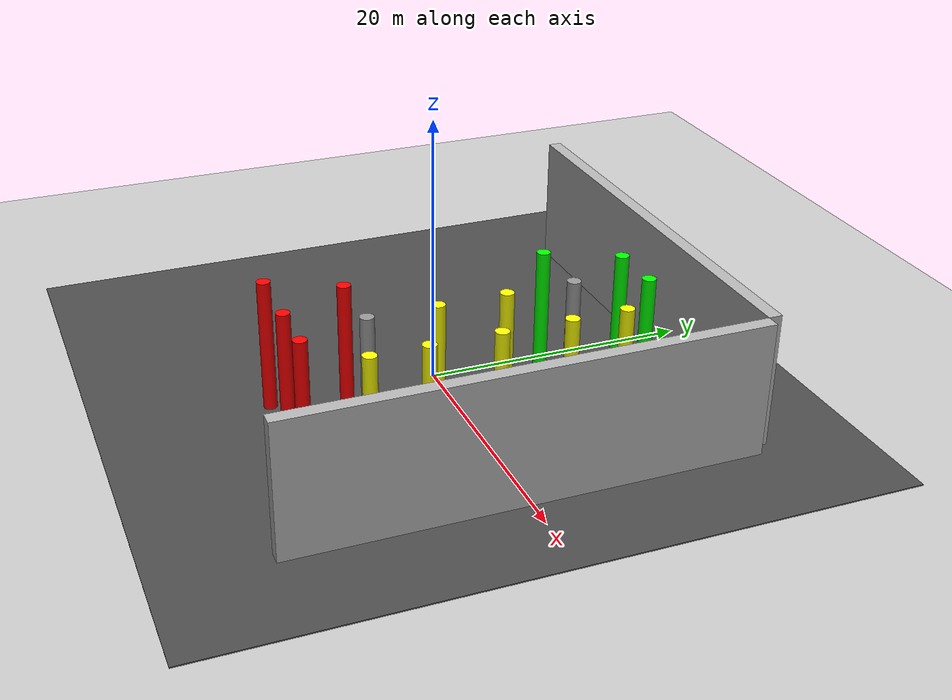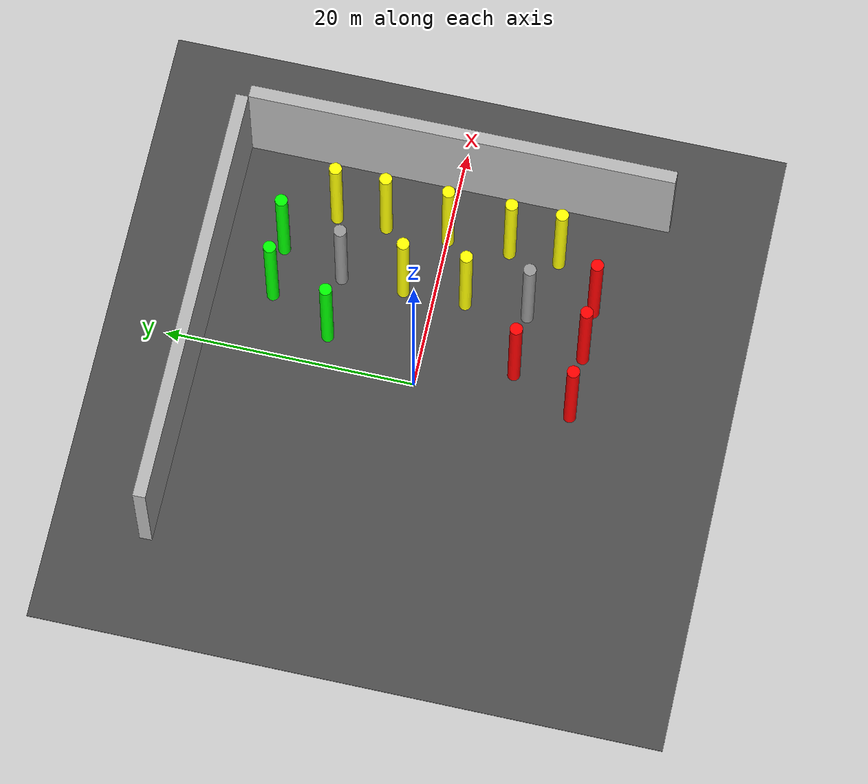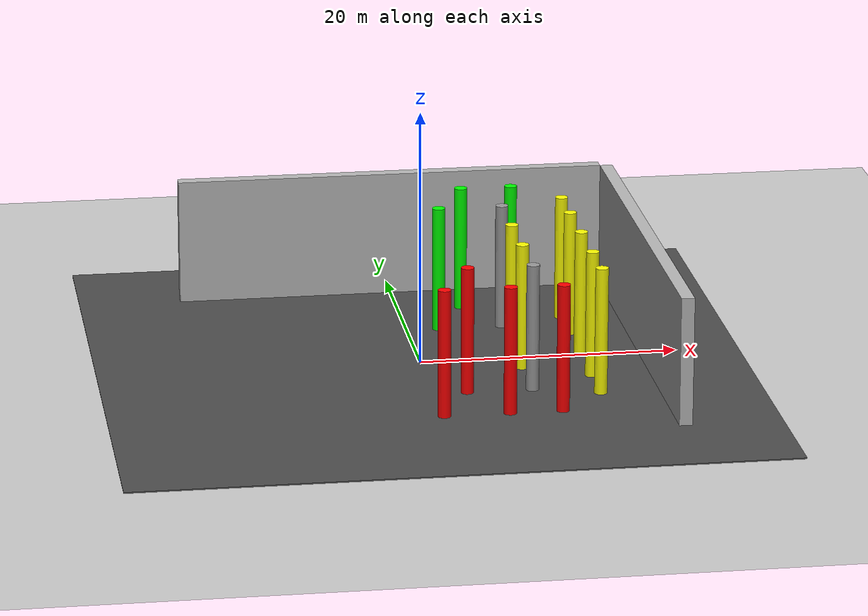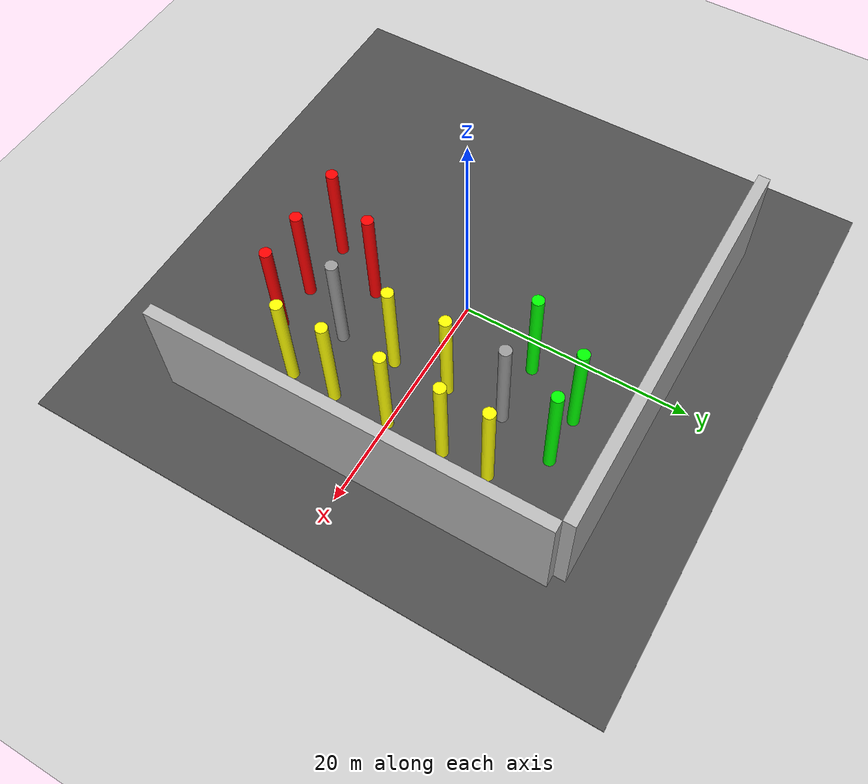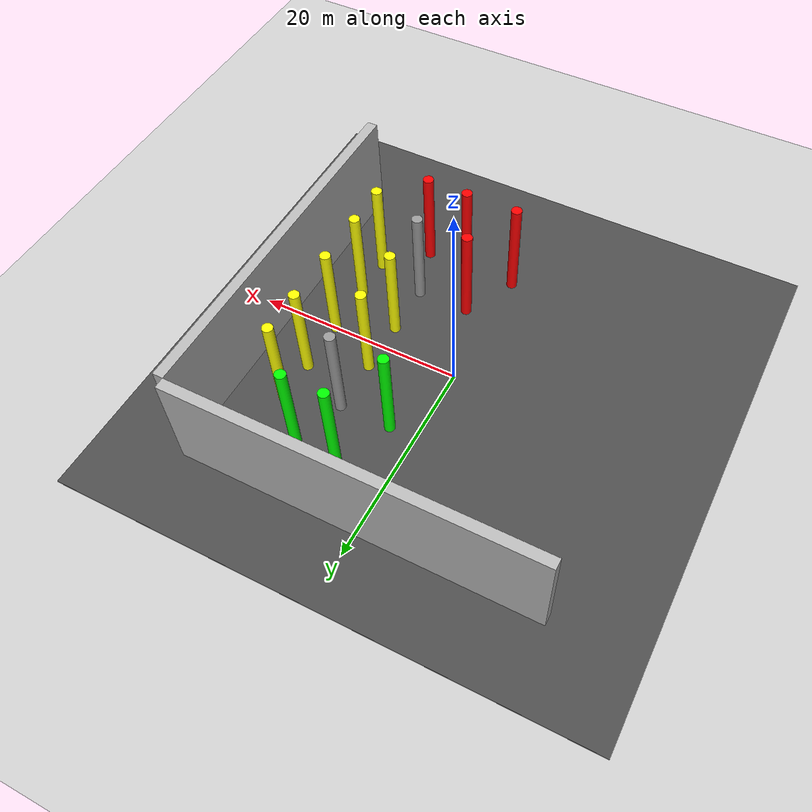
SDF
<sdf version="1.7">
 <world name="default">
  <include><uri>model://sun</uri></include>
  <include><uri>model://ground_plane</uri></include>
  <model name="asphalt_plane">
   <link name="link">
    <inertial>
     <mass>1</mass>
     <inertia><ixx>1</ixx><ixy>0</ixy><ixz>0</ixz><iyy>1</iyy><iyz>0</iyz><izz>1</izz></inertia>
    </inertial>
    <visual name="visual">
     <cast_shadows>0</cast_shadows>
     <geometry><box><size>50 50 0.1</size></box></geometry>
     <material>
      <script>
       <uri>model://asphalt_plane/materials/scripts</uri>
       <uri>model://asphalt_plane/materials/textures</uri>
       <name>vrc/asphalt</name>
      </script>
      <shader type="pixel"><normal_map>__default__</normal_map></shader>
      <ambient>0.5 0.5 0.5 1</ambient>
      <diffuse>0.5 0.5 0.5 1</diffuse>
      <specular>0.2 0.2 0.2 1</specular>
      <emissive>0 0 0 1</emissive>
     </material>
    </visual>
    <collision name="collision">
     <geometry><box><size>50 50 0.1</size></box></geometry>
     <surface>
      <friction>
       <ode><mu>1</mu><mu2>1</mu2><fdir1>0 0 0</fdir1><slip1>0</slip1><slip2>0</slip2></ode>
       <torsional>
        <coefficient>1</coefficient>
        <patch_radius>0</patch_radius>
        <surface_radius>0</surface_radius>
        <use_patch_radius>1</use_patch_radius>
        <ode><slip>0</slip></ode>
       </torsional>
      </friction>
      <bounce><restitution_coefficient>0</restitution_coefficient><threshold>1e+06</threshold></bounce>
      <contact>
       <collide_without_contact>0</collide_without_contact>
       <collide_without_contact_bitmask>1</collide_without_contact_bitmask>
       <collide_bitmask>1</collide_bitmask>
       <ode>
        <soft_cfm>0</soft_cfm>
        <soft_erp>0.2</soft_erp>
        <kp>1e+13</kp>
        <kd>1</kd>
        <max_vel>0.01</max_vel>
        <min_depth>0</min_depth>
       </ode>
       <bullet>
        <split_impulse>1</split_impulse>
        <split_impulse_penetration_threshold>-0.01</split_impulse_penetration_threshold>
        <soft_cfm>0</soft_cfm>
        <soft_erp>0.2</soft_erp>
        <kp>1e+13</kp>
        <kd>1</kd>
       </bullet>
      </contact>
     </surface>
    </collision>
   </link>
   <static>1</static>
   <pose>-0.063761 -0.010768 0 0 -0 0</pose>
  </model>
  <model name="red_cylinder">
   <link name="link">
    <inertial>
     <mass>1</mass>
     <inertia><ixx>0.145833</ixx><ixy>0</ixy><ixz>0</ixz><iyy>0.145833</iyy><iyz>0</iyz><izz>0.125</izz></inertia>
    </inertial>
    <visual name="visual">
     <geometry><cylinder><radius>0.5</radius><length>10</length></cylinder></geometry>
     <material>
      <script><name>Gazebo/Grey</name><uri>file://media/materials/scripts/gazebo.material</uri></script>
      <shader type="pixel"><normal_map>__default__</normal_map></shader>
      <ambient>1 0 0 0</ambient>
      <diffuse>0.7 0.7 0.7 1</diffuse>
      <specular>0.01 0.01 0.01 1</specular>
      <emissive>0 0 0 1</emissive>
     </material>
    </visual>
    <collision name="collision">
     <geometry><cylinder><radius>0.5</radius><length>10</length></cylinder></geometry>
     <surface>
      <friction>
       <ode><mu>1</mu><mu2>1</mu2><fdir1>0 0 0</fdir1><slip1>0</slip1><slip2>0</slip2></ode>
       <torsional>
        <coefficient>1</coefficient>
        <patch_radius>0</patch_radius>
        <surface_radius>0</surface_radius>
        <use_patch_radius>1</use_patch_radius>
        <ode><slip>0</slip></ode>
       </torsional>
      </friction>
      <bounce><restitution_coefficient>0</restitution_coefficient><threshold>1e+06</threshold></bounce>
      <contact>
       <collide_without_contact>0</collide_without_contact>
       <collide_without_contact_bitmask>1</collide_without_contact_bitmask>
       <collide_bitmask>1</collide_bitmask>
       <ode>
        <soft_cfm>0</soft_cfm>
        <soft_erp>0.2</soft_erp>
        <kp>1e+13</kp>
        <kd>1</kd>
        <max_vel>0.01</max_vel>
        <min_depth>0</min_depth>
       </ode>
       <bullet>
        <split_impulse>1</split_impulse>
        <split_impulse_penetration_threshold>-0.01</split_impulse_penetration_threshold>
        <soft_cfm>0</soft_cfm>
        <soft_erp>0.2</soft_erp>
        <kp>1e+13</kp>
        <kd>1</kd>
       </bullet>
      </contact>
     </surface>
    </collision>
   </link>
   <static>1</static>
   <pose>0.0144 -12.5 5 0 -0 0</pose>
  </model>
  <model name="yellow_cylinder">
   <link name="link">
    <inertial>
     <mass>1</mass>
     <inertia><ixx>0.145833</ixx><ixy>0</ixy><ixz>0</ixz><iyy>0.145833</iyy><iyz>0</iyz><izz>0.125</izz></inertia>
    </inertial>
    <visual name="visual">
     <geometry><cylinder><radius>0.5</radius><length>10</length></cylinder></geometry>
     <material>
      <script><name>Gazebo/Grey</name><uri>file://media/materials/scripts/gazebo.material</uri></script>
      <shader type="pixel"><normal_map>__default__</normal_map></shader>
      <ambient>1 1 0 0</ambient>
      <diffuse>0.7 0.7 0.7 1</diffuse>
      <specular>0.01 0.01 0.01 1</specular>
      <emissive>0 0 0 1</emissive>
     </material>
    </visual>
    <collision name="collision">
     <geometry><cylinder><radius>0.5</radius><length>10</length></cylinder></geometry>
     <surface>
      <friction>
       <ode><mu>1</mu><mu2>1</mu2><fdir1>0 0 0</fdir1><slip1>0</slip1><slip2>0</slip2></ode>
       <torsional>
        <coefficient>1</coefficient>
        <patch_radius>0</patch_radius>
        <surface_radius>0</surface_radius>
        <use_patch_radius>1</use_patch_radius>
        <ode><slip>0</slip></ode>
       </torsional>
      </friction>
      <bounce><restitution_coefficient>0</restitution_coefficient><threshold>1e+06</threshold></bounce>
      <contact>
       <collide_without_contact>0</collide_without_contact>
       <collide_without_contact_bitmask>1</collide_without_contact_bitmask>
       <collide_bitmask>1</collide_bitmask>
       <ode>
        <soft_cfm>0</soft_cfm>
        <soft_erp>0.2</soft_erp>
        <kp>1e+13</kp>
        <kd>1</kd>
        <max_vel>0.01</max_vel>
        <min_depth>0</min_depth>
       </ode>
       <bullet>
        <split_impulse>1</split_impulse>
        <split_impulse_penetration_threshold>-0.01</split_impulse_penetration_threshold>
        <soft_cfm>0</soft_cfm>
        <soft_erp>0.2</soft_erp>
        <kp>1e+13</kp>
        <kd>1</kd>
       </bullet>
      </contact>
     </surface>
    </collision>
   </link>
   <static>1</static>
   <pose>12.5 0 5 0 -0 0</pose>
  </model>
  <model name="yellow_cylinder_clone">
   <link name="link">
    <inertial>
     <mass>1</mass>
     <inertia><ixx>0.145833</ixx><ixy>0</ixy><ixz>0</ixz><iyy>0.145833</iyy><iyz>0</iyz><izz>0.125</izz></inertia>
    </inertial>
    <visual name="visual">
     <geometry><cylinder><radius>0.5</radius><length>10</length></cylinder></geometry>
     <material>
      <script><name>Gazebo/Grey</name><uri>file://media/materials/scripts/gazebo.material</uri></script>
      <shader type="pixel"><normal_map>__default__</normal_map></shader>
      <ambient>1 1 0 0</ambient>
      <diffuse>0.7 0.7 0.7 1</diffuse>
      <specular>0.01 0.01 0.01 1</specular>
      <emissive>0 0 0 1</emissive>
     </material>
    </visual>
    <collision name="collision">
     <geometry><cylinder><radius>0.5</radius><length>10</length></cylinder></geometry>
     <surface>
      <friction>
       <ode><mu>1</mu><mu2>1</mu2><fdir1>0 0 0</fdir1><slip1>0</slip1><slip2>0</slip2></ode>
       <torsional>
        <coefficient>1</coefficient>
        <patch_radius>0</patch_radius>
        <surface_radius>0</surface_radius>
        <use_patch_radius>1</use_patch_radius>
        <ode><slip>0</slip></ode>
       </torsional>
      </friction>
      <bounce><restitution_coefficient>0</restitution_coefficient><threshold>1e+06</threshold></bounce>
      <contact>
       <collide_without_contact>0</collide_without_contact>
       <collide_without_contact_bitmask>1</collide_without_contact_bitmask>
       <collide_bitmask>1</collide_bitmask>
       <ode>
        <soft_cfm>0</soft_cfm>
        <soft_erp>0.2</soft_erp>
        <kp>1e+13</kp>
        <kd>1</kd>
        <max_vel>0.01</max_vel>
        <min_depth>0</min_depth>
       </ode>
       <bullet>
        <split_impulse>1</split_impulse>
        <split_impulse_penetration_threshold>-0.01</split_impulse_penetration_threshold>
        <soft_cfm>0</soft_cfm>
        <soft_erp>0.2</soft_erp>
        <kp>1e+13</kp>
        <kd>1</kd>
       </bullet>
      </contact>
     </surface>
    </collision>
   </link>
   <static>1</static>
   <pose>12.5 5 5 0 -0 0</pose>
  </model>
  <model name="yellow_cylinder_clone_clone">
   <link name="link">
    <inertial>
     <mass>1</mass>
     <inertia><ixx>0.145833</ixx><ixy>0</ixy><ixz>0</ixz><iyy>0.145833</iyy><iyz>0</iyz><izz>0.125</izz></inertia>
    </inertial>
    <visual name="visual">
     <geometry><cylinder><radius>0.5</radius><length>10</length></cylinder></geometry>
     <material>
      <script><name>Gazebo/Grey</name><uri>file://media/materials/scripts/gazebo.material</uri></script>
      <shader type="pixel"><normal_map>__default__</normal_map></shader>
      <ambient>1 1 0 0</ambient>
      <diffuse>0.7 0.7 0.7 1</diffuse>
      <specular>0.01 0.01 0.01 1</specular>
      <emissive>0 0 0 1</emissive>
     </material>
    </visual>
    <collision name="collision">
     <geometry><cylinder><radius>0.5</radius><length>10</length></cylinder></geometry>
     <surface>
      <friction>
       <ode><mu>1</mu><mu2>1</mu2><fdir1>0 0 0</fdir1><slip1>0</slip1><slip2>0</slip2></ode>
       <torsional>
        <coefficient>1</coefficient>
        <patch_radius>0</patch_radius>
        <surface_radius>0</surface_radius>
        <use_patch_radius>1</use_patch_radius>
        <ode><slip>0</slip></ode>
       </torsional>
      </friction>
      <bounce><restitution_coefficient>0</restitution_coefficient><threshold>1e+06</threshold></bounce>
      <contact>
       <collide_without_contact>0</collide_without_contact>
       <collide_without_contact_bitmask>1</collide_without_contact_bitmask>
       <collide_bitmask>1</collide_bitmask>
       <ode>
        <soft_cfm>0</soft_cfm>
        <soft_erp>0.2</soft_erp>
        <kp>1e+13</kp>
        <kd>1</kd>
        <max_vel>0.01</max_vel>
        <min_depth>0</min_depth>
       </ode>
       <bullet>
        <split_impulse>1</split_impulse>
        <split_impulse_penetration_threshold>-0.01</split_impulse_penetration_threshold>
        <soft_cfm>0</soft_cfm>
        <soft_erp>0.2</soft_erp>
        <kp>1e+13</kp>
        <kd>1</kd>
       </bullet>
      </contact>
     </surface>
    </collision>
   </link>
   <static>1</static>
   <pose>12.5 9 5 0 -0 0</pose>
  </model>
  <model name="yellow_cylinder_clone_0">
   <link name="link">
    <inertial>
     <mass>1</mass>
     <inertia><ixx>0.145833</ixx><ixy>0</ixy><ixz>0</ixz><iyy>0.145833</iyy><iyz>0</iyz><izz>0.125</izz></inertia>
    </inertial>
    <visual name="visual">
     <geometry><cylinder><radius>0.5</radius><length>10</length></cylinder></geometry>
     <material>
      <script><name>Gazebo/Grey</name><uri>file://media/materials/scripts/gazebo.material</uri></script>
      <shader type="pixel"><normal_map>__default__</normal_map></shader>
      <ambient>1 1 0 0</ambient>
      <diffuse>0.7 0.7 0.7 1</diffuse>
      <specular>0.01 0.01 0.01 1</specular>
      <emissive>0 0 0 1</emissive>
     </material>
    </visual>
    <collision name="collision">
     <geometry><cylinder><radius>0.5</radius><length>10</length></cylinder></geometry>
     <surface>
      <friction>
       <ode><mu>1</mu><mu2>1</mu2><fdir1>0 0 0</fdir1><slip1>0</slip1><slip2>0</slip2></ode>
       <torsional>
        <coefficient>1</coefficient>
        <patch_radius>0</patch_radius>
        <surface_radius>0</surface_radius>
        <use_patch_radius>1</use_patch_radius>
        <ode><slip>0</slip></ode>
       </torsional>
      </friction>
      <bounce><restitution_coefficient>0</restitution_coefficient><threshold>1e+06</threshold></bounce>
      <contact>
       <collide_without_contact>0</collide_without_contact>
       <collide_without_contact_bitmask>1</collide_without_contact_bitmask>
       <collide_bitmask>1</collide_bitmask>
       <ode>
        <soft_cfm>0</soft_cfm>
        <soft_erp>0.2</soft_erp>
        <kp>1e+13</kp>
        <kd>1</kd>
        <max_vel>0.01</max_vel>
        <min_depth>0</min_depth>
       </ode>
       <bullet>
        <split_impulse>1</split_impulse>
        <split_impulse_penetration_threshold>-0.01</split_impulse_penetration_threshold>
        <soft_cfm>0</soft_cfm>
        <soft_erp>0.2</soft_erp>
        <kp>1e+13</kp>
        <kd>1</kd>
       </bullet>
      </contact>
     </surface>
    </collision>
   </link>
   <static>1</static>
   <pose>12.5 -5 5 0 -0 0</pose>
  </model>
  <model name="yellow_cylinder_clone_1">
   <link name="link">
    <inertial>
     <mass>1</mass>
     <inertia><ixx>0.145833</ixx><ixy>0</ixy><ixz>0</ixz><iyy>0.145833</iyy><iyz>0</iyz><izz>0.125</izz></inertia>
    </inertial>
    <visual name="visual">
     <geometry><cylinder><radius>0.5</radius><length>10</length></cylinder></geometry>
     <material>
      <script><name>Gazebo/Grey</name><uri>file://media/materials/scripts/gazebo.material</uri></script>
      <shader type="pixel"><normal_map>__default__</normal_map></shader>
      <ambient>1 1 0 0</ambient>
      <diffuse>0.7 0.7 0.7 1</diffuse>
      <specular>0.01 0.01 0.01 1</specular>
      <emissive>0 0 0 1</emissive>
     </material>
    </visual>
    <collision name="collision">
     <geometry><cylinder><radius>0.5</radius><length>10</length></cylinder></geometry>
     <surface>
      <friction>
       <ode><mu>1</mu><mu2>1</mu2><fdir1>0 0 0</fdir1><slip1>0</slip1><slip2>0</slip2></ode>
       <torsional>
        <coefficient>1</coefficient>
        <patch_radius>0</patch_radius>
        <surface_radius>0</surface_radius>
        <use_patch_radius>1</use_patch_radius>
        <ode><slip>0</slip></ode>
       </torsional>
      </friction>
      <bounce><restitution_coefficient>0</restitution_coefficient><threshold>1e+06</threshold></bounce>
      <contact>
       <collide_without_contact>0</collide_without_contact>
       <collide_without_contact_bitmask>1</collide_without_contact_bitmask>
       <collide_bitmask>1</collide_bitmask>
       <ode>
        <soft_cfm>0</soft_cfm>
        <soft_erp>0.2</soft_erp>
        <kp>1e+13</kp>
        <kd>1</kd>
        <max_vel>0.01</max_vel>
        <min_depth>0</min_depth>
       </ode>
       <bullet>
        <split_impulse>1</split_impulse>
        <split_impulse_penetration_threshold>-0.01</split_impulse_penetration_threshold>
        <soft_cfm>0</soft_cfm>
        <soft_erp>0.2</soft_erp>
        <kp>1e+13</kp>
        <kd>1</kd>
       </bullet>
      </contact>
     </surface>
    </collision>
   </link>
   <static>1</static>
   <pose>12.5 -9 5 0 -0 0</pose>
  </model>
  <model name="red_cylinder_clone_0">
   <link name="link">
    <inertial>
     <mass>1</mass>
     <inertia><ixx>0.145833</ixx><ixy>0</ixy><ixz>0</ixz><iyy>0.145833</iyy><iyz>0</iyz><izz>0.125</izz></inertia>
    </inertial>
    <visual name="visual">
     <geometry><cylinder><radius>0.5</radius><length>10</length></cylinder></geometry>
     <material>
      <script><name>Gazebo/Grey</name><uri>file://media/materials/scripts/gazebo.material</uri></script>
      <shader type="pixel"><normal_map>__default__</normal_map></shader>
      <ambient>1 0 0 0</ambient>
      <diffuse>0.7 0.7 0.7 1</diffuse>
      <specular>0.01 0.01 0.01 1</specular>
      <emissive>0 0 0 1</emissive>
     </material>
    </visual>
    <collision name="collision">
     <geometry><cylinder><radius>0.5</radius><length>10</length></cylinder></geometry>
     <surface>
      <friction>
       <ode><mu>1</mu><mu2>1</mu2><fdir1>0 0 0</fdir1><slip1>0</slip1><slip2>0</slip2></ode>
       <torsional>
        <coefficient>1</coefficient>
        <patch_radius>0</patch_radius>
        <surface_radius>0</surface_radius>
        <use_patch_radius>1</use_patch_radius>
        <ode><slip>0</slip></ode>
       </torsional>
      </friction>
      <bounce><restitution_coefficient>0</restitution_coefficient><threshold>1e+06</threshold></bounce>
      <contact>
       <collide_without_contact>0</collide_without_contact>
       <collide_without_contact_bitmask>1</collide_without_contact_bitmask>
       <collide_bitmask>1</collide_bitmask>
       <ode>
        <soft_cfm>0</soft_cfm>
        <soft_erp>0.2</soft_erp>
        <kp>1e+13</kp>
        <kd>1</kd>
        <max_vel>0.01</max_vel>
        <min_depth>0</min_depth>
       </ode>
       <bullet>
        <split_impulse>1</split_impulse>
        <split_impulse_penetration_threshold>-0.01</split_impulse_penetration_threshold>
        <soft_cfm>0</soft_cfm>
        <soft_erp>0.2</soft_erp>
        <kp>1e+13</kp>
        <kd>1</kd>
       </bullet>
      </contact>
     </surface>
    </collision>
   </link>
   <static>1</static>
   <pose>5 -12.5 5 0 -0 0</pose>
  </model>
  <model name="red_cylinder_clone_2">
   <link name="link">
    <inertial>
     <mass>1</mass>
     <inertia><ixx>0.145833</ixx><ixy>0</ixy><ixz>0</ixz><iyy>0.145833</iyy><iyz>0</iyz><izz>0.125</izz></inertia>
    </inertial>
    <visual name="visual">
     <geometry><cylinder><radius>0.5</radius><length>10</length></cylinder></geometry>
     <material>
      <script><name>Gazebo/Grey</name><uri>file://media/materials/scripts/gazebo.material</uri></script>
      <shader type="pixel"><normal_map>__default__</normal_map></shader>
      <ambient>1 0 0 0</ambient>
      <diffuse>0.7 0.7 0.7 1</diffuse>
      <specular>0.01 0.01 0.01 1</specular>
      <emissive>0 0 0 1</emissive>
     </material>
    </visual>
    <collision name="collision">
     <geometry><cylinder><radius>0.5</radius><length>10</length></cylinder></geometry>
     <surface>
      <friction>
       <ode><mu>1</mu><mu2>1</mu2><fdir1>0 0 0</fdir1><slip1>0</slip1><slip2>0</slip2></ode>
       <torsional>
        <coefficient>1</coefficient>
        <patch_radius>0</patch_radius>
        <surface_radius>0</surface_radius>
        <use_patch_radius>1</use_patch_radius>
        <ode><slip>0</slip></ode>
       </torsional>
      </friction>
      <bounce><restitution_coefficient>0</restitution_coefficient><threshold>1e+06</threshold></bounce>
      <contact>
       <collide_without_contact>0</collide_without_contact>
       <collide_without_contact_bitmask>1</collide_without_contact_bitmask>
       <collide_bitmask>1</collide_bitmask>
       <ode>
        <soft_cfm>0</soft_cfm>
        <soft_erp>0.2</soft_erp>
        <kp>1e+13</kp>
        <kd>1</kd>
        <max_vel>0.01</max_vel>
        <min_depth>0</min_depth>
       </ode>
       <bullet>
        <split_impulse>1</split_impulse>
        <split_impulse_penetration_threshold>-0.01</split_impulse_penetration_threshold>
        <soft_cfm>0</soft_cfm>
        <soft_erp>0.2</soft_erp>
        <kp>1e+13</kp>
        <kd>1</kd>
       </bullet>
      </contact>
     </surface>
    </collision>
   </link>
   <static>1</static>
   <pose>9 -12.5 5 0 -0 0</pose>
  </model>
  <model name="green_cylinder_clone_0">
   <link name="link">
    <inertial>
     <mass>1</mass>
     <inertia><ixx>0.145833</ixx><ixy>0</ixy><ixz>0</ixz><iyy>0.145833</iyy><iyz>0</iyz><izz>0.125</izz></inertia>
    </inertial>
    <visual name="visual">
     <geometry><cylinder><radius>0.5</radius><length>10</length></cylinder></geometry>
     <material>
      <script><name>Gazebo/Grey</name><uri>file://media/materials/scripts/gazebo.material</uri></script>
      <shader type="pixel"><normal_map>__default__</normal_map></shader>
      <ambient>0 1 0 0</ambient>
      <diffuse>0.7 0.7 0.7 1</diffuse>
      <specular>0.01 0.01 0.01 1</specular>
      <emissive>0 0 0 1</emissive>
     </material>
    </visual>
    <collision name="collision">
     <geometry><cylinder><radius>0.5</radius><length>10</length></cylinder></geometry>
     <surface>
      <friction>
       <ode><mu>1</mu><mu2>1</mu2><fdir1>0 0 0</fdir1><slip1>0</slip1><slip2>0</slip2></ode>
       <torsional>
        <coefficient>1</coefficient>
        <patch_radius>0</patch_radius>
        <surface_radius>0</surface_radius>
        <use_patch_radius>1</use_patch_radius>
        <ode><slip>0</slip></ode>
       </torsional>
      </friction>
      <bounce><restitution_coefficient>0</restitution_coefficient><threshold>1e+06</threshold></bounce>
      <contact>
       <collide_without_contact>0</collide_without_contact>
       <collide_without_contact_bitmask>1</collide_without_contact_bitmask>
       <collide_bitmask>1</collide_bitmask>
       <ode>
        <soft_cfm>0</soft_cfm>
        <soft_erp>0.2</soft_erp>
        <kp>1e+13</kp>
        <kd>1</kd>
        <max_vel>0.01</max_vel>
        <min_depth>0</min_depth>
       </ode>
       <bullet>
        <split_impulse>1</split_impulse>
        <split_impulse_penetration_threshold>-0.01</split_impulse_penetration_threshold>
        <soft_cfm>0</soft_cfm>
        <soft_erp>0.2</soft_erp>
        <kp>1e+13</kp>
        <kd>1</kd>
       </bullet>
      </contact>
     </surface>
    </collision>
   </link>
   <static>1</static>
   <pose>5 12.5 5 0 -0 0</pose>
  </model>
  <model name="green_cylinder_clone_2">
   <link name="link">
    <inertial>
     <mass>1</mass>
     <inertia><ixx>0.145833</ixx><ixy>0</ixy><ixz>0</ixz><iyy>0.145833</iyy><iyz>0</iyz><izz>0.125</izz></inertia>
    </inertial>
    <visual name="visual">
     <geometry><cylinder><radius>0.5</radius><length>10</length></cylinder></geometry>
     <material>
      <script><name>Gazebo/Grey</name><uri>file://media/materials/scripts/gazebo.material</uri></script>
      <shader type="pixel"><normal_map>__default__</normal_map></shader>
      <ambient>0 1 0 0</ambient>
      <diffuse>0.7 0.7 0.7 1</diffuse>
      <specular>0.01 0.01 0.01 1</specular>
      <emissive>0 0 0 1</emissive>
     </material>
    </visual>
    <collision name="collision">
     <geometry><cylinder><radius>0.5</radius><length>10</length></cylinder></geometry>
     <surface>
      <friction>
       <ode><mu>1</mu><mu2>1</mu2><fdir1>0 0 0</fdir1><slip1>0</slip1><slip2>0</slip2></ode>
       <torsional>
        <coefficient>1</coefficient>
        <patch_radius>0</patch_radius>
        <surface_radius>0</surface_radius>
        <use_patch_radius>1</use_patch_radius>
        <ode><slip>0</slip></ode>
       </torsional>
      </friction>
      <bounce><restitution_coefficient>0</restitution_coefficient><threshold>1e+06</threshold></bounce>
      <contact>
       <collide_without_contact>0</collide_without_contact>
       <collide_without_contact_bitmask>1</collide_without_contact_bitmask>
       <collide_bitmask>1</collide_bitmask>
       <ode>
        <soft_cfm>0</soft_cfm>
        <soft_erp>0.2</soft_erp>
        <kp>1e+13</kp>
        <kd>1</kd>
        <max_vel>0.01</max_vel>
        <min_depth>0</min_depth>
       </ode>
       <bullet>
        <split_impulse>1</split_impulse>
        <split_impulse_penetration_threshold>-0.01</split_impulse_penetration_threshold>
        <soft_cfm>0</soft_cfm>
        <soft_erp>0.2</soft_erp>
        <kp>1e+13</kp>
        <kd>1</kd>
       </bullet>
      </contact>
     </surface>
    </collision>
   </link>
   <static>1</static>
   <pose>9 12.5 5 0 -0 0</pose>
  </model>
  <model name="red_cylinder_clone_3">
   <link name="link">
    <inertial>
     <mass>1</mass>
     <inertia><ixx>0.145833</ixx><ixy>0</ixy><ixz>0</ixz><iyy>0.145833</iyy><iyz>0</iyz><izz>0.125</izz></inertia>
    </inertial>
    <visual name="visual">
     <geometry><cylinder><radius>0.5</radius><length>10</length></cylinder></geometry>
     <material>
      <script><name>Gazebo/Grey</name><uri>file://media/materials/scripts/gazebo.material</uri></script>
      <shader type="pixel"><normal_map>__default__</normal_map></shader>
      <ambient>1 0 0 0</ambient>
      <diffuse>0.7 0.7 0.7 1</diffuse>
      <specular>0.01 0.01 0.01 1</specular>
      <emissive>0 0 0 1</emissive>
     </material>
    </visual>
    <collision name="collision">
     <geometry><cylinder><radius>0.5</radius><length>10</length></cylinder></geometry>
     <surface>
      <friction>
       <ode><mu>1</mu><mu2>1</mu2><fdir1>0 0 0</fdir1><slip1>0</slip1><slip2>0</slip2></ode>
       <torsional>
        <coefficient>1</coefficient>
        <patch_radius>0</patch_radius>
        <surface_radius>0</surface_radius>
        <use_patch_radius>1</use_patch_radius>
        <ode><slip>0</slip></ode>
       </torsional>
      </friction>
      <bounce><restitution_coefficient>0</restitution_coefficient><threshold>1e+06</threshold></bounce>
      <contact>
       <collide_without_contact>0</collide_without_contact>
       <collide_without_contact_bitmask>1</collide_without_contact_bitmask>
       <collide_bitmask>1</collide_bitmask>
       <ode>
        <soft_cfm>0</soft_cfm>
        <soft_erp>0.2</soft_erp>
        <kp>1e+13</kp>
        <kd>1</kd>
        <max_vel>0.01</max_vel>
        <min_depth>0</min_depth>
       </ode>
       <bullet>
        <split_impulse>1</split_impulse>
        <split_impulse_penetration_threshold>-0.01</split_impulse_penetration_threshold>
        <soft_cfm>0</soft_cfm>
        <soft_erp>0.2</soft_erp>
        <kp>1e+13</kp>
        <kd>1</kd>
       </bullet>
      </contact>
     </surface>
    </collision>
   </link>
   <static>1</static>
   <pose>2.5 -7.5 5 0 -0 0</pose>
  </model>
  <model name="green_cylinder_clone_3">
   <link name="link">
    <inertial>
     <mass>1</mass>
     <inertia><ixx>0.145833</ixx><ixy>0</ixy><ixz>0</ixz><iyy>0.145833</iyy><iyz>0</iyz><izz>0.125</izz></inertia>
    </inertial>
    <visual name="visual">
     <geometry><cylinder><radius>0.5</radius><length>10</length></cylinder></geometry>
     <material>
      <script><name>Gazebo/Grey</name><uri>file://media/materials/scripts/gazebo.material</uri></script>
      <shader type="pixel"><normal_map>__default__</normal_map></shader>
      <ambient>0 1 0 0</ambient>
      <diffuse>0.7 0.7 0.7 1</diffuse>
      <specular>0.01 0.01 0.01 1</specular>
      <emissive>0 0 0 1</emissive>
     </material>
    </visual>
    <collision name="collision">
     <geometry><cylinder><radius>0.5</radius><length>10</length></cylinder></geometry>
     <surface>
      <friction>
       <ode><mu>1</mu><mu2>1</mu2><fdir1>0 0 0</fdir1><slip1>0</slip1><slip2>0</slip2></ode>
       <torsional>
        <coefficient>1</coefficient>
        <patch_radius>0</patch_radius>
        <surface_radius>0</surface_radius>
        <use_patch_radius>1</use_patch_radius>
        <ode><slip>0</slip></ode>
       </torsional>
      </friction>
      <bounce><restitution_coefficient>0</restitution_coefficient><threshold>1e+06</threshold></bounce>
      <contact>
       <collide_without_contact>0</collide_without_contact>
       <collide_without_contact_bitmask>1</collide_without_contact_bitmask>
       <collide_bitmask>1</collide_bitmask>
       <ode>
        <soft_cfm>0</soft_cfm>
        <soft_erp>0.2</soft_erp>
        <kp>1e+13</kp>
        <kd>1</kd>
        <max_vel>0.01</max_vel>
        <min_depth>0</min_depth>
       </ode>
       <bullet>
        <split_impulse>1</split_impulse>
        <split_impulse_penetration_threshold>-0.01</split_impulse_penetration_threshold>
        <soft_cfm>0</soft_cfm>
        <soft_erp>0.2</soft_erp>
        <kp>1e+13</kp>
        <kd>1</kd>
       </bullet>
      </contact>
     </surface>
    </collision>
   </link>
   <static>1</static>
   <pose>2.5 7.5 5 0 -0 0</pose>
  </model>
  <model name="yellow_cylinder_clone_0_clone">
   <link name="link">
    <inertial>
     <mass>1</mass>
     <inertia><ixx>0.145833</ixx><ixy>0</ixy><ixz>0</ixz><iyy>0.145833</iyy><iyz>0</iyz><izz>0.125</izz></inertia>
    </inertial>
    <visual name="visual">
     <geometry><cylinder><radius>0.5</radius><length>10</length></cylinder></geometry>
     <material>
      <script><name>Gazebo/Grey</name><uri>file://media/materials/scripts/gazebo.material</uri></script>
      <shader type="pixel"><normal_map>__default__</normal_map></shader>
      <ambient>1 1 0 0</ambient>
      <diffuse>0.7 0.7 0.7 1</diffuse>
      <specular>0.01 0.01 0.01 1</specular>
      <emissive>0 0 0 1</emissive>
     </material>
    </visual>
    <collision name="collision">
     <geometry><cylinder><radius>0.5</radius><length>10</length></cylinder></geometry>
     <surface>
      <friction>
       <ode><mu>1</mu><mu2>1</mu2><fdir1>0 0 0</fdir1><slip1>0</slip1><slip2>0</slip2></ode>
       <torsional>
        <coefficient>1</coefficient>
        <patch_radius>0</patch_radius>
        <surface_radius>0</surface_radius>
        <use_patch_radius>1</use_patch_radius>
        <ode><slip>0</slip></ode>
       </torsional>
      </friction>
      <bounce><restitution_coefficient>0</restitution_coefficient><threshold>1e+06</threshold></bounce>
      <contact>
       <collide_without_contact>0</collide_without_contact>
       <collide_without_contact_bitmask>1</collide_without_contact_bitmask>
       <collide_bitmask>1</collide_bitmask>
       <ode>
        <soft_cfm>0</soft_cfm>
        <soft_erp>0.2</soft_erp>
        <kp>1e+13</kp>
        <kd>1</kd>
        <max_vel>0.01</max_vel>
        <min_depth>0</min_depth>
       </ode>
       <bullet>
        <split_impulse>1</split_impulse>
        <split_impulse_penetration_threshold>-0.01</split_impulse_penetration_threshold>
        <soft_cfm>0</soft_cfm>
        <soft_erp>0.2</soft_erp>
        <kp>1e+13</kp>
        <kd>1</kd>
       </bullet>
      </contact>
     </surface>
    </collision>
   </link>
   <static>1</static>
   <pose>7.5 -2.5 5 0 -0 0</pose>
  </model>
  <model name="yellow_cylinder_clone_2">
   <link name="link">
    <inertial>
     <mass>1</mass>
     <inertia><ixx>0.145833</ixx><ixy>0</ixy><ixz>0</ixz><iyy>0.145833</iyy><iyz>0</iyz><izz>0.125</izz></inertia>
    </inertial>
    <visual name="visual">
     <geometry><cylinder><radius>0.5</radius><length>10</length></cylinder></geometry>
     <material>
      <script><name>Gazebo/Grey</name><uri>file://media/materials/scripts/gazebo.material</uri></script>
      <shader type="pixel"><normal_map>__default__</normal_map></shader>
      <ambient>1 1 0 0</ambient>
      <diffuse>0.7 0.7 0.7 1</diffuse>
      <specular>0.01 0.01 0.01 1</specular>
      <emissive>0 0 0 1</emissive>
     </material>
    </visual>
    <collision name="collision">
     <geometry><cylinder><radius>0.5</radius><length>10</length></cylinder></geometry>
     <surface>
      <friction>
       <ode><mu>1</mu><mu2>1</mu2><fdir1>0 0 0</fdir1><slip1>0</slip1><slip2>0</slip2></ode>
       <torsional>
        <coefficient>1</coefficient>
        <patch_radius>0</patch_radius>
        <surface_radius>0</surface_radius>
        <use_patch_radius>1</use_patch_radius>
        <ode><slip>0</slip></ode>
       </torsional>
      </friction>
      <bounce><restitution_coefficient>0</restitution_coefficient><threshold>1e+06</threshold></bounce>
      <contact>
       <collide_without_contact>0</collide_without_contact>
       <collide_without_contact_bitmask>1</collide_without_contact_bitmask>
       <collide_bitmask>1</collide_bitmask>
       <ode>
        <soft_cfm>0</soft_cfm>
        <soft_erp>0.2</soft_erp>
        <kp>1e+13</kp>
        <kd>1</kd>
        <max_vel>0.01</max_vel>
        <min_depth>0</min_depth>
       </ode>
       <bullet>
        <split_impulse>1</split_impulse>
        <split_impulse_penetration_threshold>-0.01</split_impulse_penetration_threshold>
        <soft_cfm>0</soft_cfm>
        <soft_erp>0.2</soft_erp>
        <kp>1e+13</kp>
        <kd>1</kd>
       </bullet>
      </contact>
     </surface>
    </collision>
   </link>
   <static>1</static>
   <pose>7.5 2.5 5 0 -0 0</pose>
  </model>
  <model name="black_cylinder_clone">
   <link name="link">
    <inertial>
     <mass>1</mass>
     <inertia><ixx>0.145833</ixx><ixy>0</ixy><ixz>0</ixz><iyy>0.145833</iyy><iyz>0</iyz><izz>0.125</izz></inertia>
    </inertial>
    <visual name="visual">
     <geometry><cylinder><radius>0.5</radius><length>10</length></cylinder></geometry>
     <material>
      <script><name>Gazebo/Grey</name><uri>file://media/materials/scripts/gazebo.material</uri></script>
      <shader type="pixel"><normal_map>__default__</normal_map></shader>
      <ambient>0.3 0.3 0.3 1</ambient>
      <diffuse>0.7 0.7 0.7 1</diffuse>
      <specular>0.01 0.01 0.01 1</specular>
      <emissive>0 0 0 1</emissive>
     </material>
    </visual>
    <collision name="collision">
     <geometry><cylinder><radius>0.5</radius><length>10</length></cylinder></geometry>
     <surface>
      <friction>
       <ode><mu>1</mu><mu2>1</mu2><fdir1>0 0 0</fdir1><slip1>0</slip1><slip2>0</slip2></ode>
       <torsional>
        <coefficient>1</coefficient>
        <patch_radius>0</patch_radius>
        <surface_radius>0</surface_radius>
        <use_patch_radius>1</use_patch_radius>
        <ode><slip>0</slip></ode>
       </torsional>
      </friction>
      <bounce><restitution_coefficient>0</restitution_coefficient><threshold>1e+06</threshold></bounce>
      <contact>
       <collide_without_contact>0</collide_without_contact>
       <collide_without_contact_bitmask>1</collide_without_contact_bitmask>
       <collide_bitmask>1</collide_bitmask>
       <ode>
        <soft_cfm>0</soft_cfm>
        <soft_erp>0.2</soft_erp>
        <kp>1e+13</kp>
        <kd>1</kd>
        <max_vel>0.01</max_vel>
        <min_depth>0</min_depth>
       </ode>
       <bullet>
        <split_impulse>1</split_impulse>
        <split_impulse_penetration_threshold>-0.01</split_impulse_penetration_threshold>
        <soft_cfm>0</soft_cfm>
        <soft_erp>0.2</soft_erp>
        <kp>1e+13</kp>
        <kd>1</kd>
       </bullet>
      </contact>
     </surface>
    </collision>
   </link>
   <static>1</static>
   <pose>7.5 -7.5 5 0 -0 0</pose>
  </model>
  <model name="black_cylinder_clone_1">
   <link name="link">
    <inertial>
     <mass>1</mass>
     <inertia><ixx>0.145833</ixx><ixy>0</ixy><ixz>0</ixz><iyy>0.145833</iyy><iyz>0</iyz><izz>0.125</izz></inertia>
    </inertial>
    <visual name="visual">
     <geometry><cylinder><radius>0.5</radius><length>10</length></cylinder></geometry>
     <material>
      <script><name>Gazebo/Grey</name><uri>file://media/materials/scripts/gazebo.material</uri></script>
      <shader type="pixel"><normal_map>__default__</normal_map></shader>
      <ambient>0.3 0.3 0.3 1</ambient>
      <diffuse>0.7 0.7 0.7 1</diffuse>
      <specular>0.01 0.01 0.01 1</specular>
      <emissive>0 0 0 1</emissive>
     </material>
    </visual>
    <collision name="collision">
     <geometry><cylinder><radius>0.5</radius><length>10</length></cylinder></geometry>
     <surface>
      <friction>
       <ode><mu>1</mu><mu2>1</mu2><fdir1>0 0 0</fdir1><slip1>0</slip1><slip2>0</slip2></ode>
       <torsional>
        <coefficient>1</coefficient>
        <patch_radius>0</patch_radius>
        <surface_radius>0</surface_radius>
        <use_patch_radius>1</use_patch_radius>
        <ode><slip>0</slip></ode>
       </torsional>
      </friction>
      <bounce><restitution_coefficient>0</restitution_coefficient><threshold>1e+06</threshold></bounce>
      <contact>
       <collide_without_contact>0</collide_without_contact>
       <collide_without_contact_bitmask>1</collide_without_contact_bitmask>
       <collide_bitmask>1</collide_bitmask>
       <ode>
        <soft_cfm>0</soft_cfm>
        <soft_erp>0.2</soft_erp>
        <kp>1e+13</kp>
        <kd>1</kd>
        <max_vel>0.01</max_vel>
        <min_depth>0</min_depth>
       </ode>
       <bullet>
        <split_impulse>1</split_impulse>
        <split_impulse_penetration_threshold>-0.01</split_impulse_penetration_threshold>
        <soft_cfm>0</soft_cfm>
        <soft_erp>0.2</soft_erp>
        <kp>1e+13</kp>
        <kd>1</kd>
       </bullet>
      </contact>
     </surface>
    </collision>
   </link>
   <static>1</static>
   <pose>7.5 7.5 5 0 -0 0</pose>
  </model>
  <include><uri>model://wall_living</uri><pose>17.5 0 5 0 0 0</pose></include>
  <include><uri>model://wall_chicken</uri><pose>0 17.5 5 0 0 0</pose></include>
 </world>
</sdf>
